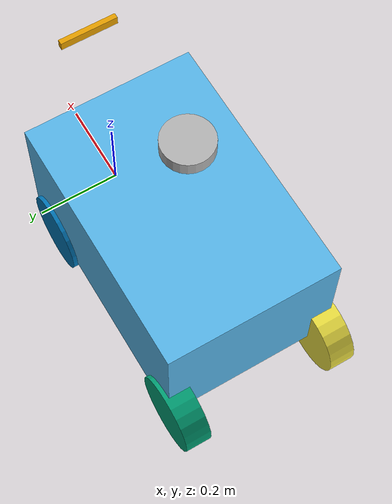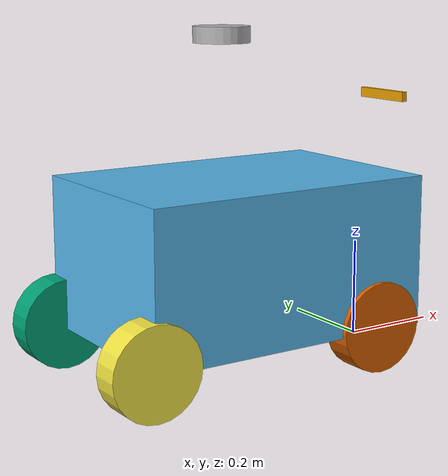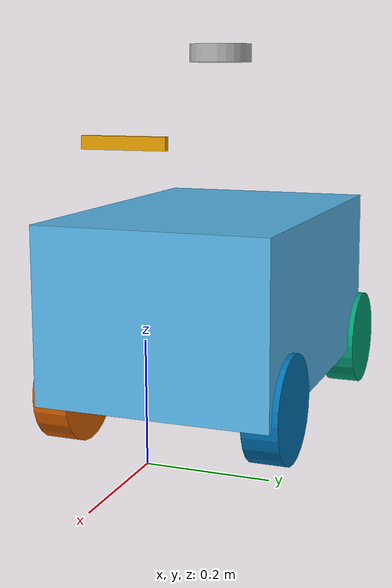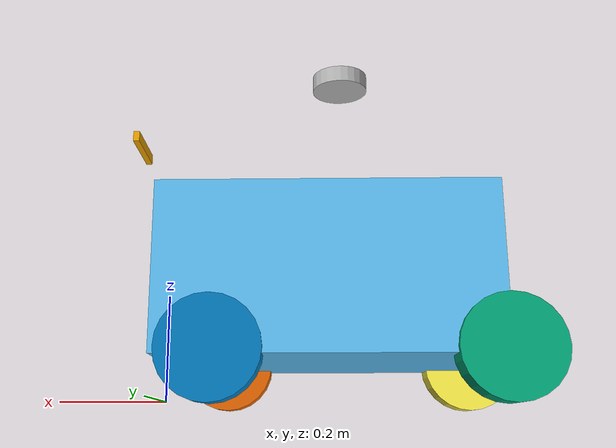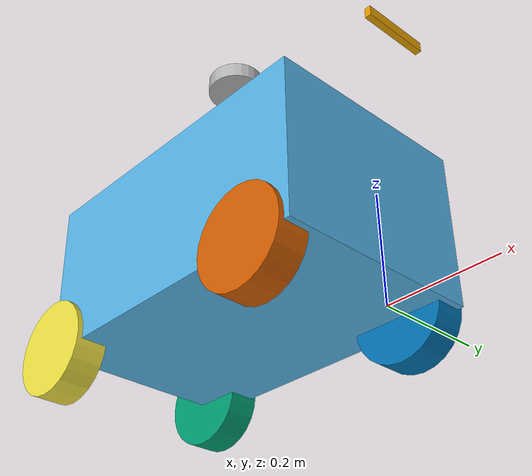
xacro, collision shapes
<?xml version="1.0"?>
<robot name="forklift" xmlns:xacro="http://ros.org/wiki/xacro">

  <xacro:include filename="$(find gazebo_rl_gym)/urdf/forklift/forklift_base.xacro" />

  <!-- Camera property definitions (keep from original model) -->
  <xacro:property name="r200_cam_rgb_px" value="0.005" />
  <xacro:property name="r200_cam_rgb_py" value="0.018" />
  <xacro:property name="r200_cam_rgb_pz" value="0.013" />
  <xacro:property name="r200_cam_depth_offset" value="0.01" />

  <!-- Base footprint as root - 必须有惯性参数才能让 Gazebo 正确计算速度 -->
  <link name="base_footprint">
    <inertial>
      <mass value="0.0001"/>
      <origin xyz="0 0 0"/>
      <inertia ixx="0.0001" ixy="0" ixz="0"
              iyy="0.0001" iyz="0"
              izz="0.0001"/>
    </inertial>
  </link>

  <!-- Instantiate forklift base: front_axle + 4 wheels -->
  <xacro:forklift_base parent_link="base_footprint" />

  <!-- IMU link on main chassis (front_axle) -->
  <joint name="imu_joint" type="fixed">
    <parent link="front_axle" />
    <child link="imu_link" />
    <origin xyz="0.0 0 0.068" rpy="0 0 0" />
  </joint>
  <link name="imu_link">
    <inertial>
      <mass value="0.001"/>
      <origin xyz="0 0 0"/>
      <inertia ixx="0.0001" ixy="0" ixz="0"
              iyy="0.0001" iyz="0"
              izz="0.0001"/>
    </inertial>
  </link>

  <!-- 2D lidar on chassis -->
  <joint name="scan_joint" type="fixed">
    <parent link="front_axle" />
    <child link="base_scan" />
    <origin xyz="-0.35 0 0.65" rpy="0 0 0" />
  </joint>

  <link name="base_scan">
    <visual>
      <origin xyz="0 0 0" rpy="0 0 0" />
      <geometry>
        <mesh filename="package://gazebo_rl_gym/meshes/turtlebot3/sensors/lds.stl" scale="0.001 0.001 0.001" />
      </geometry>
      <material name="dark" />
    </visual>

    <collision>
      <origin xyz="0.015 0 -0.0065" rpy="0 0 0" />
      <geometry>
        <cylinder length="0.0315" radius="0.055" />
      </geometry>
    </collision>

    <inertial>
      <mass value="0.114" />
      <origin xyz="0 0 0" />
      <inertia ixx="0.001" ixy="0.0" ixz="0.0"
               iyy="0.001" iyz="0.0"
               izz="0.001" />
    </inertial>
  </link>

  <!-- Realsense camera on chassis -->
  <joint name="camera_joint" type="fixed">
    <origin xyz="0.064 -0.065 0.5" rpy="0 0 0" />
    <parent link="front_axle" />
    <child link="camera_link" />
  </joint>

  <link name="camera_link">
    <visual>
      <origin xyz="0 0 0" rpy="1.57 0 1.57" />
      <geometry>
        <mesh filename="package://gazebo_rl_gym/meshes/turtlebot3/sensors/r200.dae" />
      </geometry>
    </visual>
    <collision>
      <origin xyz="0.003 0.065 0.007" rpy="0 0 0" />
      <geometry>
        <box size="0.012 0.132 0.020" />
      </geometry>
    </collision>
  </link>

  <joint name="camera_rgb_joint" type="fixed">
    <origin xyz="${r200_cam_rgb_px} ${r200_cam_rgb_py} ${r200_cam_rgb_pz}" rpy="0 0 0" />
    <parent link="camera_link" />
    <child link="camera_rgb_frame" />
  </joint>
  <link name="camera_rgb_frame" />

  <joint name="camera_rgb_optical_joint" type="fixed">
    <origin xyz="0 0 0" rpy="-1.57 0 -1.57" />
    <parent link="camera_rgb_frame" />
    <child link="camera_rgb_optical_frame" />
  </joint>
  <link name="camera_rgb_optical_frame" />

  <joint name="camera_depth_joint" type="fixed">
    <origin xyz="${r200_cam_rgb_px} ${r200_cam_rgb_py + r200_cam_depth_offset} ${r200_cam_rgb_pz}" rpy="0 0 0" />
    <parent link="camera_link" />
    <child link="camera_depth_frame" />
  </joint>
  <link name="camera_depth_frame" />

  <joint name="camera_depth_optical_joint" type="fixed">
    <origin xyz="0 0 0" rpy="-1.57 0 -1.57" />
    <parent link="camera_depth_frame" />
    <child link="camera_depth_optical_frame" />
  </joint>
  <link name="camera_depth_optical_frame" />

</robot>

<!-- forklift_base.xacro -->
<robot xmlns:xacro="http://ros.org/wiki/xacro">
  <!-- 定义参数 用于轮子的尺寸和缩放比例 -->
  <xacro:property name="wheel_mesh_scale" value="0.3"/>
  <xacro:property name="wheel_radius_origin" value="0.3"/>
  <xacro:property name="wheel_length_origin" value="0.2"/>

  <xacro:macro name="box_inertial" params="x y z mass">
    <inertial>
      <mass value="${mass}" />
      <inertia
        ixx="${(mass / 12) * (y*y + z*z)}"
        ixy="0.0"
        ixz="0.0"
        iyy="${(mass / 12) * (x*x + z*z)}"
        iyz="0.0"
        izz="${(mass / 12) * (x*x + y*y)}" />
    </inertial>
  </xacro:macro>

  <xacro:macro name="cylinder_inertial" params="radius length mass">
    <inertial>
      <mass value="${mass}" />
      <inertia
        ixx="${(mass / 12) * (3 * radius * radius + length * length)}"
        ixy="0.0"
        ixz="0.0"
        iyy="${(mass / 12) * (3 * radius * radius + length * length)}"
        iyz="0.0"
        izz="${(mass / 2) * radius * radius}" />
    </inertial>
  </xacro:macro>

  <xacro:macro name="forklift_base" params="parent_link">
    <xacro:property name="PI" value="3.1415926835897931"/>

    <link name="front_axle">
      <visual>
        <origin xyz="-0.3 0 0.22" rpy="0 0 0"/>
        <geometry>
          <mesh filename="package://gazebo_rl_gym/meshes/forklift/forklift_base2.dae" scale="${wheel_mesh_scale} ${wheel_mesh_scale} ${wheel_mesh_scale}"/>
        </geometry>
      </visual>
      <collision>
        <origin xyz="-0.3 0 0.22" rpy="0 0 0"/>
        <geometry>
          <box size="0.6 0.4 0.3"/>
        </geometry>
      </collision>
      <xacro:box_inertial x="0.6" y="0.4" z="0.3" mass="0.5" />
    </link>

    <joint name="front_joint_odom" type="fixed">
      <origin xyz="0 0 0" rpy="0 0 0" />
      <parent link="${parent_link}" />
      <child link="front_axle" />
    </joint>

    <!-- Rear Left Wheel - 被动轮，直接连接到 front_axle -->
    <link name="rear_left_wheel_link">
      <visual>
        <origin xyz="0 0 0" rpy="0 0 ${PI/2}"/>
        <geometry>
          <mesh filename="package://gazebo_rl_gym/meshes/forklift/wheel.dae" scale="${wheel_mesh_scale} ${wheel_mesh_scale} ${wheel_mesh_scale}"/>
        </geometry>
      </visual>
      <collision>
        <origin xyz="0 0 0" rpy="${PI/2} 0 0"/>
        <geometry>
         <cylinder radius="${wheel_radius_origin * wheel_mesh_scale}"
          length="${wheel_length_origin * wheel_mesh_scale}"/>
        </geometry>
      </collision>
      <xacro:cylinder_inertial radius="${wheel_radius_origin * wheel_mesh_scale}"
                                length="${wheel_length_origin * wheel_mesh_scale}"
                                mass="0.05" />
    </link>
    <joint name="rear_left_wheel_joint" type="continuous">
      <parent link="front_axle"/>
      <child  link="rear_left_wheel_link"/>
      <origin xyz="-0.6 0.18 0.08" rpy="0 0 0"/>
      <axis xyz="0 1 0"/>
    </joint>

    <!-- Rear Right Wheel - 被动轮，直接连接到 front_axle -->
    <link name="rear_right_wheel_link">
      <visual>
        <origin xyz="0 0 0" rpy="0 0 -${PI/2}"/>
        <geometry>
          <mesh filename="package://gazebo_rl_gym/meshes/forklift/wheel.dae" scale="${wheel_mesh_scale} ${wheel_mesh_scale} ${wheel_mesh_scale}"/>
        </geometry>
      </visual>
      <collision>
        <origin xyz="0 0 0" rpy="${PI/2} 0 0"/>
        <geometry>
          <cylinder radius="${wheel_radius_origin * wheel_mesh_scale}"
          length="${wheel_length_origin * wheel_mesh_scale}"/>
        </geometry>
      </collision>
      <xacro:cylinder_inertial radius="${wheel_radius_origin * wheel_mesh_scale}"
                                length="${wheel_length_origin * wheel_mesh_scale}"
                                mass="0.05" />
    </link>
    <joint name="rear_right_wheel_joint" type="continuous">
      <parent link="front_axle"/>
      <child link="rear_right_wheel_link"/>
      <origin xyz="-0.6 -0.18 0.08" rpy="0 0 0"/>
      <axis xyz="0 1 0"/>
    </joint>

    <!-- Front Left Wheel (前轮驱动) - 必须是 continuous 才能转动 -->
    <link name="front_left_wheel_link">
      <visual>
        <origin xyz="0 0 0" rpy="0 0 ${PI/2}"/>
        <geometry>
          <mesh filename="package://gazebo_rl_gym/meshes/forklift/wheel.dae" scale="${wheel_mesh_scale} ${wheel_mesh_scale} ${wheel_mesh_scale}"/>
        </geometry>
      </visual>
      <collision>
        <origin xyz="0 0 0" rpy="${PI/2} 0 0"/>
        <geometry>
          <cylinder radius="${wheel_radius_origin * wheel_mesh_scale}"
          length="${wheel_length_origin * wheel_mesh_scale}"/>
        </geometry>
      </collision>
      <xacro:cylinder_inertial radius="${wheel_radius_origin * wheel_mesh_scale}"
                                length="${wheel_length_origin * wheel_mesh_scale}"
                                mass="0.05" />
    </link>
    <joint name="front_left_wheel_joint" type="continuous">
      <parent link="front_axle"/>
      <child link="front_left_wheel_link"/>
      <origin xyz="-0.10 0.18 0.08" rpy="0 0 0"/>
      <axis xyz="0 1 0"/>
    </joint>

    <!-- Front Right Wheel (前轮驱动) - 必须是 continuous 才能转动 -->
    <link name="front_right_wheel_link">
      <visual>
        <origin xyz="0 0 0" rpy="0 0 -${PI/2}"/>
        <geometry>
          <mesh filename="package://gazebo_rl_gym/meshes/forklift/wheel.dae" scale="${wheel_mesh_scale} ${wheel_mesh_scale} ${wheel_mesh_scale}"/>
        </geometry>
      </visual>
      <collision>
        <origin xyz="0 0 0" rpy="${PI/2} 0 0"/>
        <geometry>
          <cylinder radius="${wheel_radius_origin * wheel_mesh_scale}"
          length="${wheel_length_origin * wheel_mesh_scale}"/>
        </geometry>
      </collision>
      <xacro:cylinder_inertial radius="${wheel_radius_origin * wheel_mesh_scale}"
                                length="${wheel_length_origin * wheel_mesh_scale}"
                                mass="0.05" />
    </link>
    <joint name="front_right_wheel_joint" type="continuous">
      <parent link="front_axle"/>
      <child link="front_right_wheel_link"/>
      <origin xyz="-0.10 -0.18 0.08" rpy="0 0 0"/>
      <axis xyz="0 1 0"/>
    </joint>
  </xacro:macro>

</robot>
